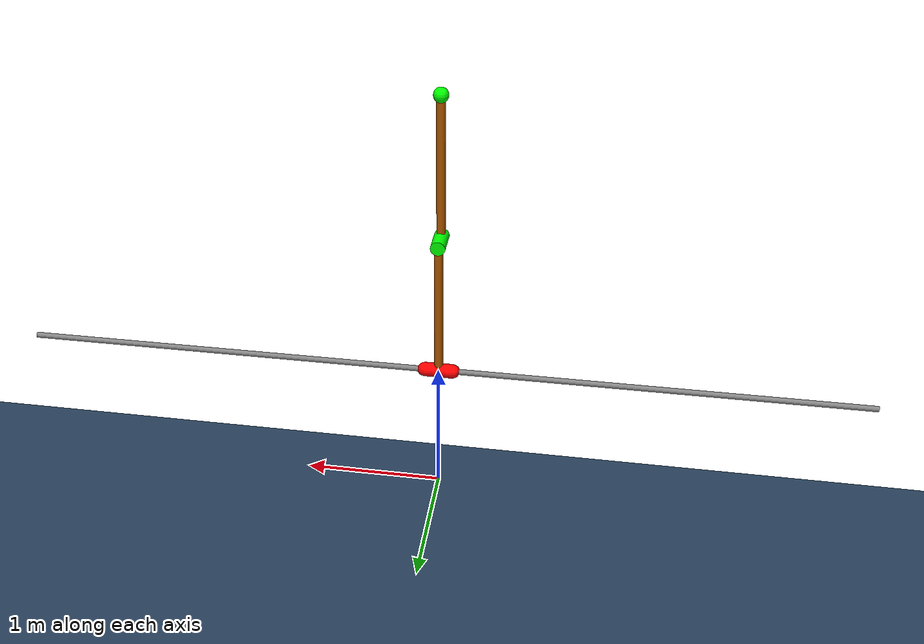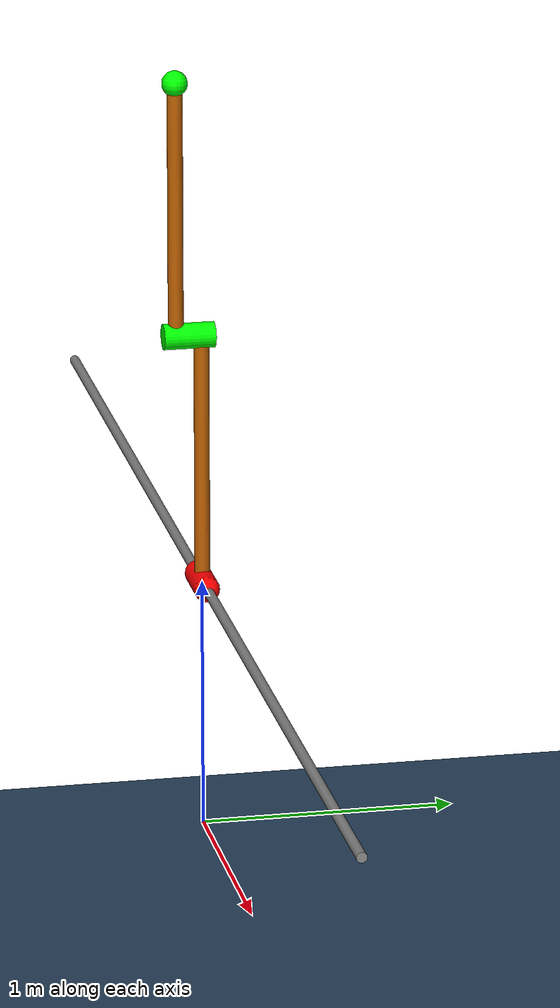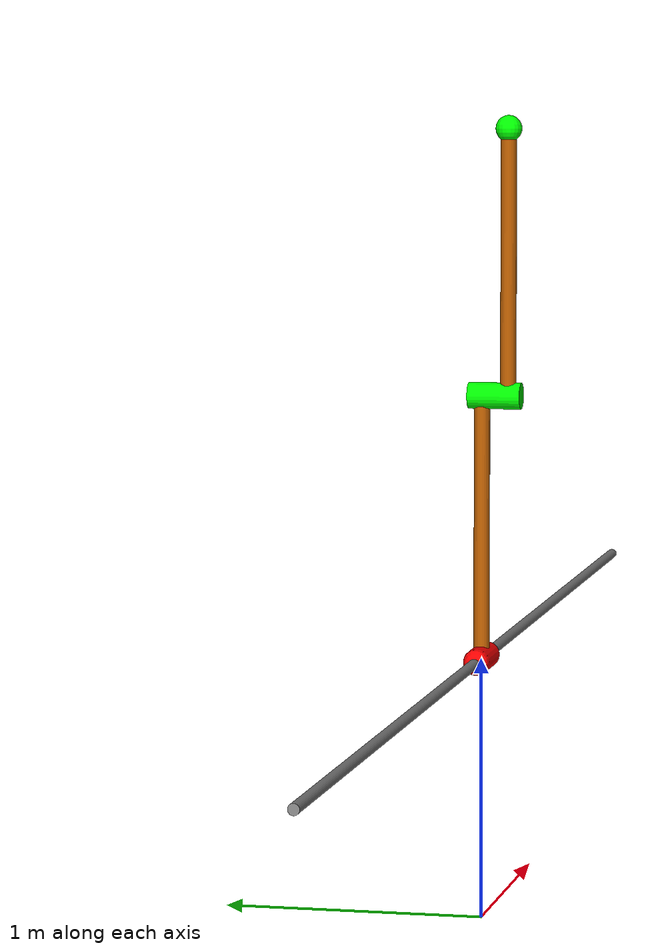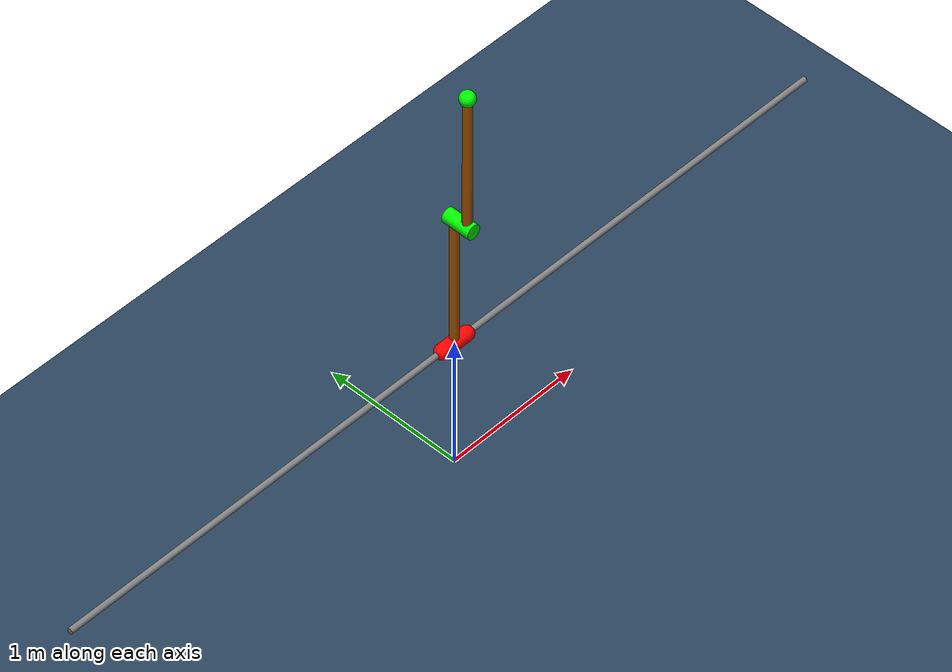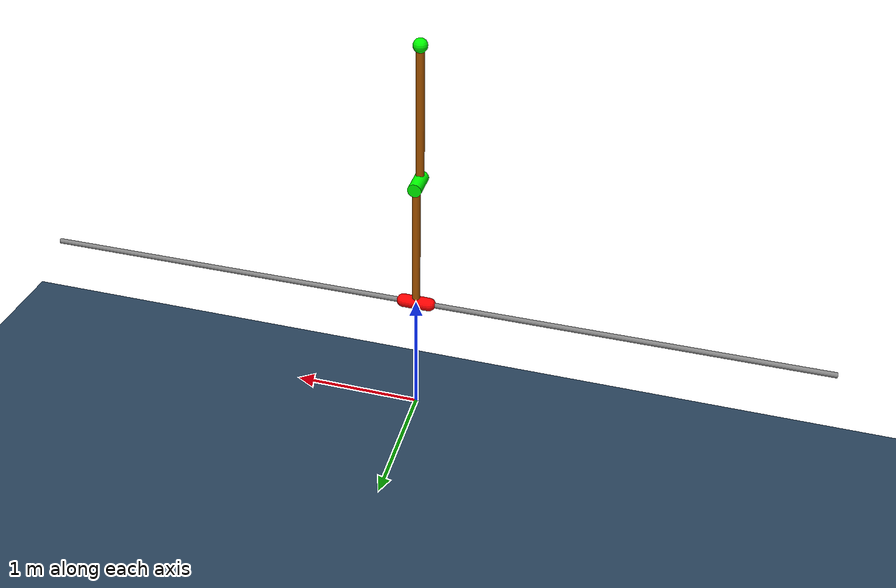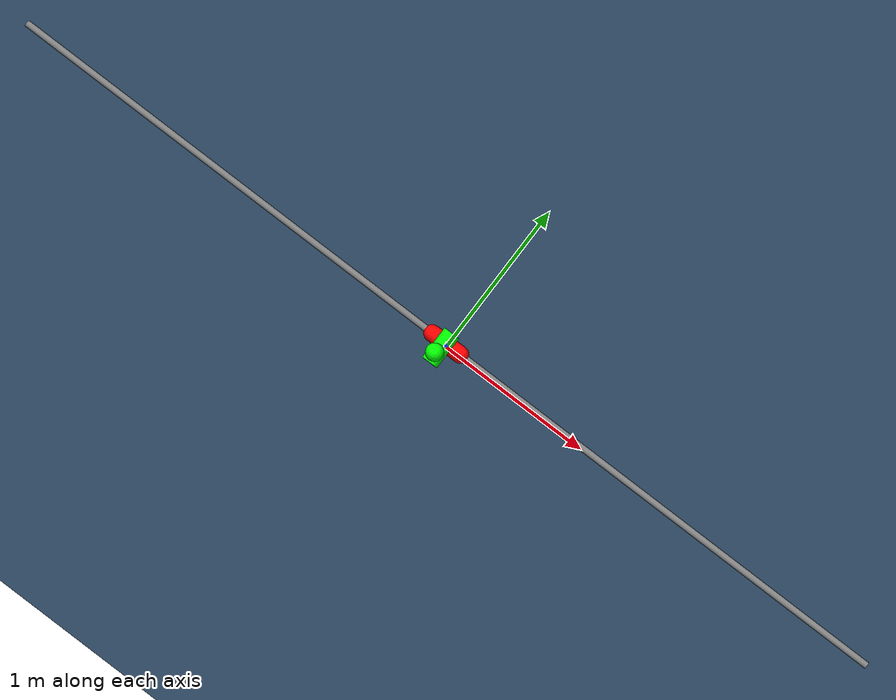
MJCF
<!-- https://mujoco.readthedocs.io/en/latest/overview.html?highlight=hello.xml#examples -->
<mujoco>
  <option gravity = "0 0 -9.81" integrator="RK4" timestep="0.0005" />
   <worldbody>
      <geom type="cylinder" size="0.02 3" rgba="0.5 0.5 0.5 1" mass="0.0" contype="0" euler="0 90 0" pos="0 0 1"/>
      <body pos="0 0 1" euler="0 180 0">
         <joint name="joint0" type="slide" axis = "-1 0 0" pos = "0 0 0" damping="1.5" />
         <geom type="capsule" size="0.05 0.1" euler="0 90 0" rgba="1 0 0 1" mass="0.8" pos="0 0 0" contype="0"/>
         <body pos="0 0.0 -0.5" euler="0 0 0">
            <joint name="joint1" type="hinge" axis = "0 -1 0" pos = "0 0 0.5" damping="1.8"/>
            <geom type="cylinder" size="0.05 0.1" rgba="0 1 0 1" mass="0.2" euler="90 0 0" pos="0 -0.05 -0.5" contype="0"/>
            <geom type="cylinder" size="0.03 0.5" rgba="0.7 0.35 0 1" mass="0.0" pos="0 0 0" contype="0"/>
            <body pos="0 -0.1 -1.0" euler="0 0 0">
              <joint name="joint2" type="hinge" axis = "0 -1 0" pos = "0 0 0.5" damping="1.2"/>
              <geom type="sphere" size="0.05" rgba="0 1 0 1" mass="0.5" pos="0 0 -0.5" contype="0"/>
              <geom type="cylinder" size="0.03 0.5" rgba="0.7 0.35 0 1" mass="0.0" pos="0 0 0" contype="0"/>
            </body>
         </body>

      </body>
    </worldbody>
   <actuator>
      <motor name="torque0" joint="joint0"  gear="1" />
      <motor name="torque1" joint="joint1"  gear="1" />
      <motor name="torque2" joint="joint2"  gear="1" />
   </actuator>
  <asset>
    <texture type="skybox" builtin="gradient" rgb1=".3 .5 .7" rgb2="0 0 0" width="512" height="512"/>
    <texture name="floor" type="2d" builtin="checker" width="512" height="512" rgb1=".1 .2 .3" rgb2=".2 .3 .4"/>
    <material name="floor" texture="floor" texrepeat="1 1" texuniform="true" reflectance=".2"/>
  </asset>
  <worldbody>
    <geom name="floor" size="10 10 .05" type="plane" material="floor" condim="3" pos="0 0 -2"/>
    <light directional="true" diffuse=".9 .9 .9" specular="0.1 0.1 0.1" pos="0 0 5" dir="0 0 -1" castshadow="true"/>
    <light name="spotlight" mode="targetbodycom" target="world" diffuse="1 1 1" specular="0.3 0.3 0.3" pos="-6 -6 4" cutoff="60"/>
  </worldbody>
</mujoco>
